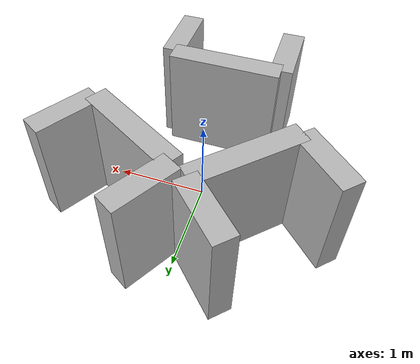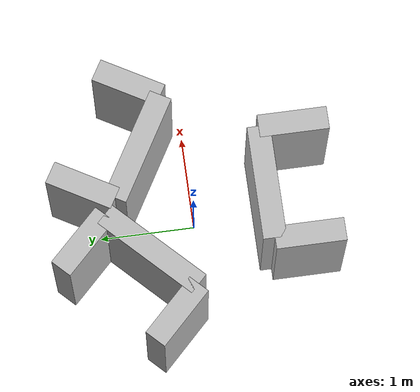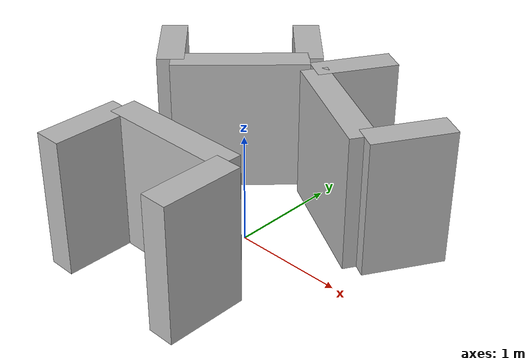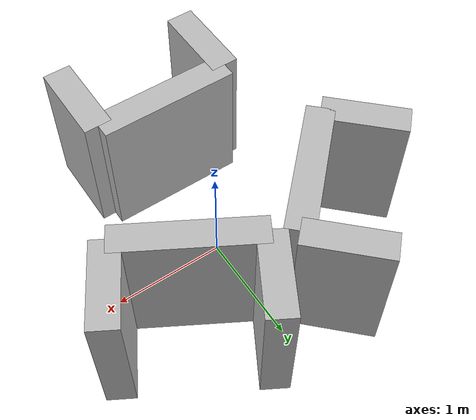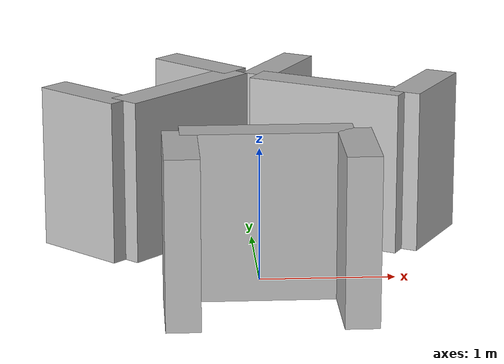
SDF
<sdf version='1.6'>
  <model name='obstacles_stage6'>
    <pose frame=''>0 0 0 0 0 0</pose>

<!-- Bottom U-shaped obstacle rotated to face the lower left corner -->
<link name='obstacle_bottom'>
  <pose frame=''>-0.55 0.5 0 0 0 0.7854</pose> <!-- cerca de 225 graus em radianos -->
  <collision name='u_obstacle_bottom_bottom'>
    <pose>0 0 0.75 0 0 0</pose>
    <geometry>
      <box>
        <size>1.2 0.24 1.2</size>
      </box>
    </geometry>
  </collision>
  <visual name='u_obstacle_bottom_bottom'>
    <pose>0 0 0.75 0 0 0</pose>
    <geometry>
      <box>
        <size>1.2 0.24 1.2</size>
      </box>
    </geometry>
  </visual>
  <collision name='u_obstacle_bottom_left'>
    <pose>-0.6 0.36 0.75 0 0 0</pose>
    <geometry>
      <box>
        <size>0.24 0.72 1.2</size>
      </box>
    </geometry>
  </collision>
  <visual name='u_obstacle_bottom_left'>
    <pose>-0.6 0.36 0.75 0 0 0</pose>
    <geometry>
      <box>
        <size>0.24 0.72 1.2</size>
      </box>
    </geometry>
  </visual>
  <collision name='u_obstacle_top_bottom'>
    <pose>0.6 0.36 0.75 0 0 0</pose>
    <geometry>
      <box>
        <size>0.24 0.72 1.2</size>
      </box>
    </geometry>
  </collision>
  <visual name='u_obstacle_top_bottom'>
    <pose>0.6 0.36 0.75 0 0 0</pose>
    <geometry>
      <box>
        <size>0.24 0.72 1.2</size>
      </box>
    </geometry>
  </visual>
</link>

    <!-- Top U-shaped obstacle rotated to face slightly to the upper left -->
    <link name='obstacle_top'>
      <pose frame=''>0.55 0.5 0 0 0 2.61799</pose> <!-- cerca de 150 graus em radianos -->
      <collision name='u_obstacle_bottom_top'>
        <pose>0 0 0.75 0 0 0</pose>
        <geometry>
          <box>
            <size>1.2 0.24 1.2</size>
          </box>
        </geometry>
      </collision>
      <visual name='u_obstacle_bottom_top'>
        <pose>0 0 0.75 0 0 0</pose>
        <geometry>
          <box>
            <size>1.2 0.24 1.2</size>
          </box>
        </geometry>
      </visual>
      <collision name='u_obstacle_left_top'>
        <pose>0.6 -0.36 0.75 0 0 0</pose>
        <geometry>
          <box>
            <size>0.24 0.72 1.2</size>
          </box>
        </geometry>
      </collision>
      <visual name='u_obstacle_left_top'>
        <pose>0.6 -0.36 0.75 0 0 0</pose>
        <geometry>
          <box>
            <size>0.24 0.72 1.2</size>
          </box>
        </geometry>
      </visual>
      <collision name='u_obstacle_top_top'>
        <pose>-0.6 -0.36 0.75 0 0 0</pose>
        <geometry>
          <box>
            <size>0.24 0.72 1.2</size>
          </box>
        </geometry>
      </collision>
      <visual name='u_obstacle_top_top'>
        <pose>-0.6 -0.36 0.75 0 0 0</pose>
        <geometry>
          <box>
            <size>0.24 0.72 1.2</size>
          </box>
        </geometry>
      </visual>
    </link>

    <!-- Central U-shaped obstacle, rotated 180 degrees -->
    <link name='obstacle_right'>
      <pose frame=''>0 -0.75 0 0 0 3.14159</pose>
      <collision name='u_obstacle_bottom_right'>
        <pose>0 0 0.75 0 0 0</pose>
        <geometry>
          <box>
            <size>1.2 0.24 1.2</size>
          </box>
        </geometry>
      </collision>
      <visual name='u_obstacle_bottom_right'>
        <pose>0 0 0.75 0 0 0</pose>
        <geometry>
          <box>
            <size>1.2 0.24 1.2</size>
          </box>
        </geometry>
      </visual>
      <collision name='u_obstacle_left_right'>
        <pose>-0.6 0.36 0.75 0 0 0</pose>
        <geometry>
          <box>
            <size>0.24 0.72 1.2</size>
          </box>
        </geometry>
      </collision>
      <visual name='u_obstacle_left_right'>
        <pose>-0.6 0.36 0.75 0 0 0</pose>
        <geometry>
          <box>
            <size>0.24 0.72 1.2</size>
          </box>
        </geometry>
      </visual>
      <collision name='u_obstacle_top_right'>
        <pose>0.6 0.36 0.75 0 0 0</pose>
        <geometry>
          <box>
            <size>0.24 0.72 1.2</size>
          </box>
        </geometry>
      </collision>
      <visual name='u_obstacle_top_right'>
        <pose>0.6 0.36 0.75 0 0 0</pose>
        <geometry>
          <box>
            <size>0.24 0.72 1.2</size>
          </box>
        </geometry>
      </visual>
    </link>

    <static>1</static>
  </model>
</sdf>
